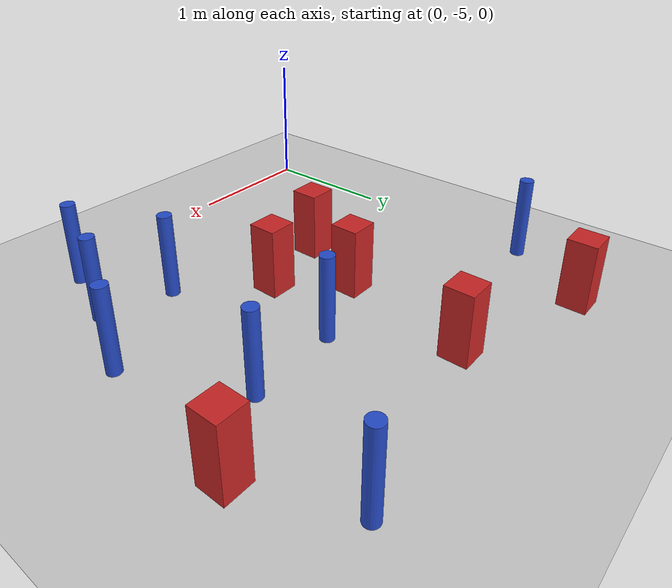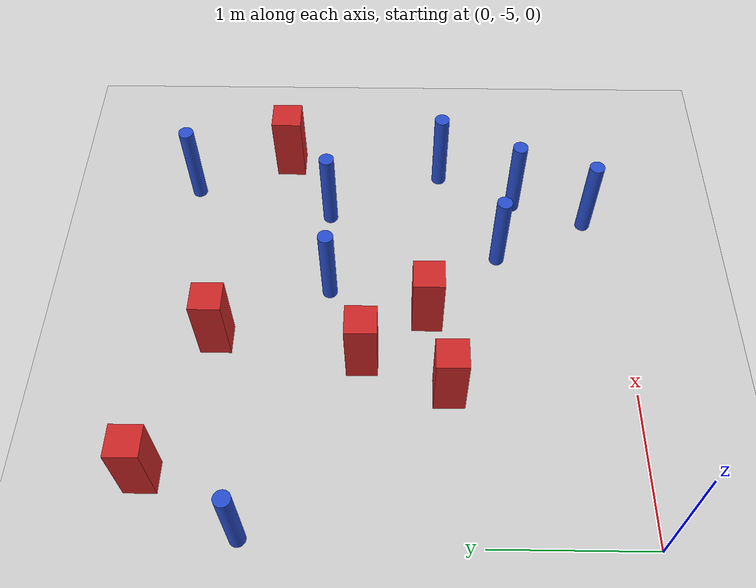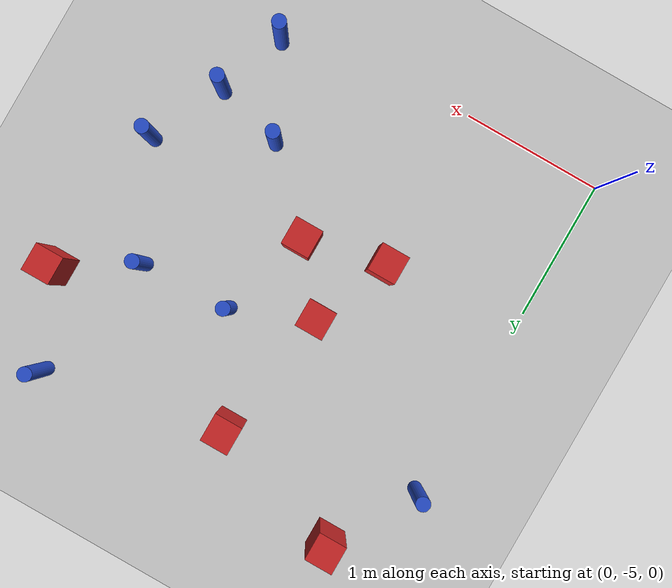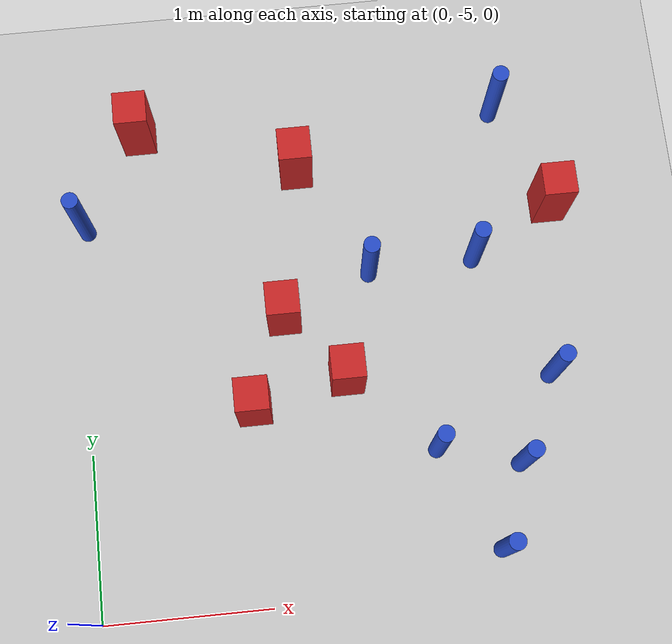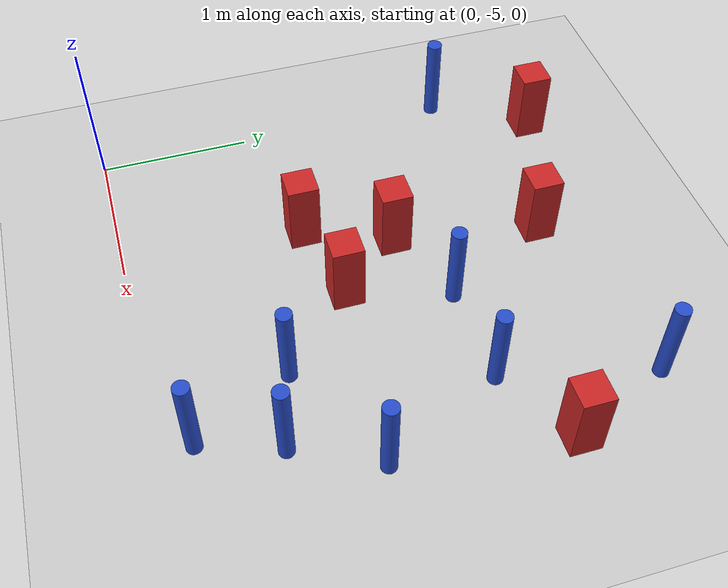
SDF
<sdf version="1.6">
 <world name="default">
  <model name="ground_plane">
   <static>1</static>
   <link name="link">
    <collision name="collision">
     <geometry><plane><normal>0 0 1</normal><size>100 100</size></plane></geometry>
     <surface><friction><ode><mu>100</mu><mu2>50</mu2></ode></friction></surface>
    </collision>
    <visual name="visual">
     <cast_shadows>0</cast_shadows>
     <geometry><plane><normal>0 0 1</normal><size>100 100</size></plane></geometry>
     <material>
      <ambient>1.0 1.0 1.0 1.0</ambient>
      <diffuse>0.8 0.8 0.8 1.0</diffuse>
      <specular>0.01 0.01 0.01 1.000000</specular>
     </material>
    </visual>
   </link>
  </model>
  <model name="square_post_obstacle55">
   <static>true</static>
   <pose>1.22004076152 -3.26660531634 8.22691968438e-08 7.2212513382e-06 -7.54495500217e-07 2.29674213826e-05</pose>
   <link name="link">
    <pose>0 0 0.25 0 -0 0</pose>
    <inertial>
     <mass>100</mass>
     <inertia>
      <ixx>0.166667</ixx>
      <ixy>0</ixy>
      <ixz>0</ixz>
      <iyy>0.166667</iyy>
      <iyz>0</iyz>
      <izz>0.166667</izz>
     </inertia>
    </inertial>
    <collision name="collision"><geometry><box><size>.2 .2 .5</size></box></geometry></collision>
    <visual name="visual">
     <geometry><box><size>.2 .2 .5</size></box></geometry>
     <material>
      <script><name>Gazebo/Red</name><uri>file://media/materials/scripts/gazebo.material</uri></script>
     </material>
    </visual>
   </link>
  </model>
  <model name="square_post_obstacle71">
   <static>true</static>
   <pose>2.92680643446 -2.6990966376 8.22691968438e-08 7.2212513382e-06 -7.54495500217e-07 2.29674213826e-05</pose>
   <link name="link">
    <pose>0 0 0.25 0 -0 0</pose>
    <inertial>
     <mass>100</mass>
     <inertia>
      <ixx>0.166667</ixx>
      <ixy>0</ixy>
      <ixz>0</ixz>
      <iyy>0.166667</iyy>
      <iyz>0</iyz>
      <izz>0.166667</izz>
     </inertia>
    </inertial>
    <collision name="collision"><geometry><box><size>.2 .2 .5</size></box></geometry></collision>
    <visual name="visual">
     <geometry><box><size>.2 .2 .5</size></box></geometry>
     <material>
      <script><name>Gazebo/Red</name><uri>file://media/materials/scripts/gazebo.material</uri></script>
     </material>
    </visual>
   </link>
  </model>
  <model name="pole_obstacle69">
   <static>true</static>
   <pose>2.79278912963 -3.78151208658 2.88873142074e-08 -9.90536690232e-09 4.6021994898e-07 -1.20965994968e-07</pose>
   <link name="link">
    <pose>0 0 0.3 0 -0 0</pose>
    <inertial>
     <mass>1</mass>
     <inertia><ixx>0.145833</ixx><ixy>0</ixy><ixz>0</ixz><iyy>0.145833</iyy><iyz>0</iyz><izz>0.125</izz></inertia>
    </inertial>
    <collision name="collision">
     <geometry><cylinder><radius>0.05</radius><length>.6</length></cylinder></geometry>
    </collision>
    <visual name="visual">
     <geometry><cylinder><radius>0.05</radius><length>.6</length></cylinder></geometry>
     <material>
      <script><name>Gazebo/Blue</name><uri>file://media/materials/scripts/gazebo.material</uri></script>
     </material>
    </visual>
   </link>
  </model>
  <model name="pole_obstacle76">
   <static>true</static>
   <pose>2.05531231607 -4.1677119398 2.88873142074e-08 -9.90536689859e-09 4.60219948989e-07 -1.20965994961e-07</pose>
   <link name="link">
    <pose>0 0 0.3 0 -0 0</pose>
    <inertial>
     <mass>1</mass>
     <inertia><ixx>0.145833</ixx><ixy>0</ixy><ixz>0</ixz><iyy>0.145833</iyy><iyz>0</iyz><izz>0.125</izz></inertia>
    </inertial>
    <collision name="collision">
     <geometry><cylinder><radius>0.05</radius><length>.6</length></cylinder></geometry>
    </collision>
    <visual name="visual">
     <geometry><cylinder><radius>0.05</radius><length>.6</length></cylinder></geometry>
     <material>
      <script><name>Gazebo/Blue</name><uri>file://media/materials/scripts/gazebo.material</uri></script>
     </material>
    </visual>
   </link>
  </model>
  <model name="square_post_obstacle118">
   <static>true</static>
   <pose>1.37948998349 -2.3213723522 8.22691968438e-08 7.2212513382e-06 -7.54495500217e-07 2.29674213826e-05</pose>
   <link name="link">
    <pose>0 0 0.25 0 -0 0</pose>
    <inertial>
     <mass>100</mass>
     <inertia>
      <ixx>0.166667</ixx>
      <ixy>0</ixy>
      <ixz>0</ixz>
      <iyy>0.166667</iyy>
      <iyz>0</iyz>
      <izz>0.166667</izz>
     </inertia>
    </inertial>
    <collision name="collision"><geometry><box><size>.2 .2 .5</size></box></geometry></collision>
    <visual name="visual">
     <geometry><box><size>.2 .2 .5</size></box></geometry>
     <material>
      <script><name>Gazebo/Red</name><uri>file://media/materials/scripts/gazebo.material</uri></script>
     </material>
    </visual>
   </link>
  </model>
  <model name="pole_obstacle139">
   <static>true</static>
   <pose>0.0464194372043 -2.59140048178 2.88873142074e-08 -9.9053669241e-09 4.60219948928e-07 -1.20965994988e-07</pose>
   <link name="link">
    <pose>0 0 0.3 0 -0 0</pose>
    <inertial>
     <mass>1</mass>
     <inertia><ixx>0.145833</ixx><ixy>0</ixy><ixz>0</ixz><iyy>0.145833</iyy><iyz>0</iyz><izz>0.125</izz></inertia>
    </inertial>
    <collision name="collision">
     <geometry><cylinder><radius>0.05</radius><length>.6</length></cylinder></geometry>
    </collision>
    <visual name="visual">
     <geometry><cylinder><radius>0.05</radius><length>.6</length></cylinder></geometry>
     <material>
      <script><name>Gazebo/Blue</name><uri>file://media/materials/scripts/gazebo.material</uri></script>
     </material>
    </visual>
   </link>
  </model>
  <model name="pole_obstacle141">
   <static>true</static>
   <pose>2.64979027185 -2.04448744297 2.88873142074e-08 -9.9053668955e-09 4.60219948996e-07 -1.20965994957e-07</pose>
   <link name="link">
    <pose>0 0 0.3 0 -0 0</pose>
    <inertial>
     <mass>1</mass>
     <inertia><ixx>0.145833</ixx><ixy>0</ixy><ixz>0</ixz><iyy>0.145833</iyy><iyz>0</iyz><izz>0.125</izz></inertia>
    </inertial>
    <collision name="collision">
     <geometry><cylinder><radius>0.05</radius><length>.6</length></cylinder></geometry>
    </collision>
    <visual name="visual">
     <geometry><cylinder><radius>0.05</radius><length>.6</length></cylinder></geometry>
     <material>
      <script><name>Gazebo/Blue</name><uri>file://media/materials/scripts/gazebo.material</uri></script>
     </material>
    </visual>
   </link>
  </model>
  <model name="pole_obstacle145">
   <static>true</static>
   <pose>2.36760184558 -4.79237131937 2.88873142074e-08 -9.90536689859e-09 4.60219948989e-07 -1.20965994961e-07</pose>
   <link name="link">
    <pose>0 0 0.3 0 -0 0</pose>
    <inertial>
     <mass>1</mass>
     <inertia><ixx>0.145833</ixx><ixy>0</ixy><ixz>0</ixz><iyy>0.145833</iyy><iyz>0</iyz><izz>0.125</izz></inertia>
    </inertial>
    <collision name="collision">
     <geometry><cylinder><radius>0.05</radius><length>.6</length></cylinder></geometry>
    </collision>
    <visual name="visual">
     <geometry><cylinder><radius>0.05</radius><length>.6</length></cylinder></geometry>
     <material>
      <script><name>Gazebo/Blue</name><uri>file://media/materials/scripts/gazebo.material</uri></script>
     </material>
    </visual>
   </link>
  </model>
  <model name="square_post_obstacle149">
   <static>true</static>
   <pose>0.992726091101 -3.81285954472 8.22691968438e-08 7.2212513382e-06 -7.54495500217e-07 2.29674213826e-05</pose>
   <link name="link">
    <pose>0 0 0.25 0 -0 0</pose>
    <inertial>
     <mass>100</mass>
     <inertia>
      <ixx>0.166667</ixx>
      <ixy>0</ixy>
      <ixz>0</ixz>
      <iyy>0.166667</iyy>
      <iyz>0</iyz>
      <izz>0.166667</izz>
     </inertia>
    </inertial>
    <collision name="collision"><geometry><box><size>.2 .2 .5</size></box></geometry></collision>
    <visual name="visual">
     <geometry><box><size>.2 .2 .5</size></box></geometry>
     <material>
      <script><name>Gazebo/Red</name><uri>file://media/materials/scripts/gazebo.material</uri></script>
     </material>
    </visual>
   </link>
  </model>
  <model name="pole_obstacle181">
   <static>true</static>
   <pose>1.7671275776 -3.03332840048 2.88873142074e-08 -9.90536689791e-09 4.6021994899e-07 -1.20965994959e-07</pose>
   <link name="link">
    <pose>0 0 0.3 0 -0 0</pose>
    <inertial>
     <mass>1</mass>
     <inertia><ixx>0.145833</ixx><ixy>0</ixy><ixz>0</ixz><iyy>0.145833</iyy><iyz>0</iyz><izz>0.125</izz></inertia>
    </inertial>
    <collision name="collision">
     <geometry><cylinder><radius>0.05</radius><length>.6</length></cylinder></geometry>
    </collision>
    <visual name="visual">
     <geometry><cylinder><radius>0.05</radius><length>.6</length></cylinder></geometry>
     <material>
      <script><name>Gazebo/Blue</name><uri>file://media/materials/scripts/gazebo.material</uri></script>
     </material>
    </visual>
   </link>
  </model>
  <model name="square_post_obstacle180">
   <static>true</static>
   <pose>1.56101290102 -3.68146595463 8.22691968438e-08 7.2212513382e-06 -7.54495500217e-07 2.29674213826e-05</pose>
   <link name="link">
    <pose>0 0 0.25 0 -0 0</pose>
    <inertial>
     <mass>100</mass>
     <inertia>
      <ixx>0.166667</ixx>
      <ixy>0</ixy>
      <ixz>0</ixz>
      <iyy>0.166667</iyy>
      <iyz>0</iyz>
      <izz>0.166667</izz>
     </inertia>
    </inertial>
    <collision name="collision"><geometry><box><size>.2 .2 .5</size></box></geometry></collision>
    <visual name="visual">
     <geometry><box><size>.2 .2 .5</size></box></geometry>
     <material>
      <script><name>Gazebo/Red</name><uri>file://media/materials/scripts/gazebo.material</uri></script>
     </material>
    </visual>
   </link>
  </model>
  <model name="square_post_obstacle182">
   <static>true</static>
   <pose>0.413481077123 -1.99149298667 8.22691968438e-08 7.2212513382e-06 -7.54495500217e-07 2.29674213826e-05</pose>
   <link name="link">
    <pose>0 0 0.25 0 -0 0</pose>
    <inertial>
     <mass>100</mass>
     <inertia>
      <ixx>0.166667</ixx>
      <ixy>0</ixy>
      <ixz>0</ixz>
      <iyy>0.166667</iyy>
      <iyz>0</iyz>
      <izz>0.166667</izz>
     </inertia>
    </inertial>
    <collision name="collision"><geometry><box><size>.2 .2 .5</size></box></geometry></collision>
    <visual name="visual">
     <geometry><box><size>.2 .2 .5</size></box></geometry>
     <material>
      <script><name>Gazebo/Red</name><uri>file://media/materials/scripts/gazebo.material</uri></script>
     </material>
    </visual>
   </link>
  </model>
  <model name="pole_obstacle199">
   <static>true</static>
   <pose>2.41678897638 -3.00656099177 2.88873142074e-08 -9.90536690232e-09 4.6021994898e-07 -1.20965994968e-07</pose>
   <link name="link">
    <pose>0 0 0.3 0 -0 0</pose>
    <inertial>
     <mass>1</mass>
     <inertia><ixx>0.145833</ixx><ixy>0</ixy><ixz>0</ixz><iyy>0.145833</iyy><iyz>0</iyz><izz>0.125</izz></inertia>
    </inertial>
    <collision name="collision">
     <geometry><cylinder><radius>0.05</radius><length>.6</length></cylinder></geometry>
    </collision>
    <visual name="visual">
     <geometry><cylinder><radius>0.05</radius><length>.6</length></cylinder></geometry>
     <material>
      <script><name>Gazebo/Blue</name><uri>file://media/materials/scripts/gazebo.material</uri></script>
     </material>
    </visual>
   </link>
  </model>
  <model name="pole_obstacle211">
   <static>true</static>
   <pose>2.53970243903 -4.30102506194 2.88873142074e-08 -9.90536689859e-09 4.60219948989e-07 -1.20965994961e-07</pose>
   <link name="link">
    <pose>0 0 0.3 0 -0 0</pose>
    <inertial>
     <mass>1</mass>
     <inertia><ixx>0.145833</ixx><ixy>0</ixy><ixz>0</ixz><iyy>0.145833</iyy><iyz>0</iyz><izz>0.125</izz></inertia>
    </inertial>
    <collision name="collision">
     <geometry><cylinder><radius>0.05</radius><length>.6</length></cylinder></geometry>
    </collision>
    <visual name="visual">
     <geometry><cylinder><radius>0.05</radius><length>.6</length></cylinder></geometry>
     <material>
      <script><name>Gazebo/Blue</name><uri>file://media/materials/scripts/gazebo.material</uri></script>
     </material>
    </visual>
   </link>
  </model>
 </world>
</sdf>
